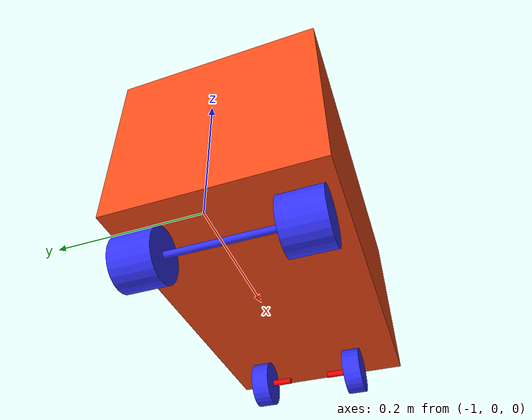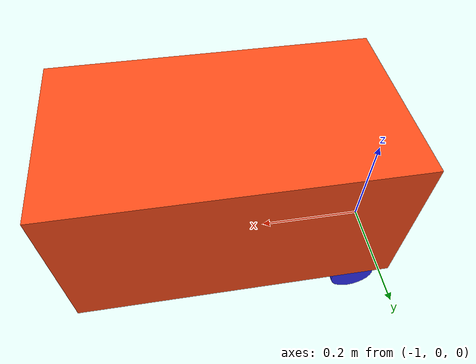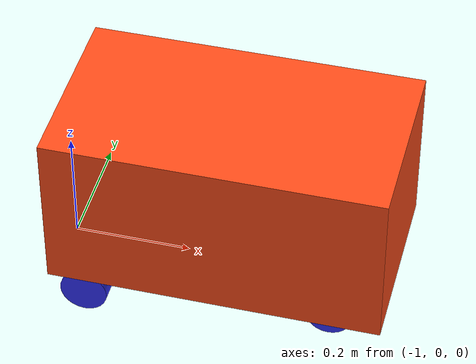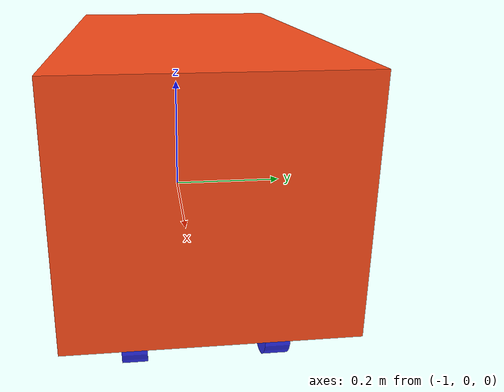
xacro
<?xml version="1.0"?>
<robot xmlns:xacro="http://www.ros.org/wiki/xacro" >

    <xacro:property name="chassis_length" value="0.559"/>
    <xacro:property name="chassis_width" value="0.311"/>
    <xacro:property name="chassis_height" value="0.2795"/>
    <xacro:property name="chassis_mass" value="1.0"/>
    <xacro:property name="front_wheel_radius" value="0.0375"/>
    <xacro:property name="rear_wheel_radius" value="0.040"/>
    <xacro:property name="front_wheel_thickness" value="0.029"/>
    <xacro:property name="rear_wheel_thickness" value="0.061"/>
    <xacro:property name="wheel_mass" value="0.05"/>
    <xacro:property name="front_wheel_offset_y" value="0.0819"/>
    <xacro:property name="rear_wheel_offset_y" value="0.1101"/>

    <material name="white">
        <color rgba="1 1 1 1" />
    </material>

    <material name="orange">
        <color rgba="1 0.3 0.1 1"/>
    </material>

    <material name="blue">
        <color rgba="0.2 0.2 1 1"/>
    </material>

    <material name="black">
        <color rgba="0 0 0 1"/>
    </material>

    <material name="red">
        <color rgba="1 0 0 1"/>
    </material>

    <!-- BASE LINK -->

    <link name="base_link">

    </link>

    <!-- BASE_FOOTPRINT LINK -->

    <joint name="base_footprint_joint" type="fixed">
        <parent link="base_link"/>
        <child link="base_footprint"/>
        <origin xyz="0 0 0" rpy="0 0 0"/>
    </joint>

    <link name="base_footprint">
    </link>

    <!-- CHASSIS LINK -->

    <joint name="chassis_joint" type="fixed">
        <parent link="base_link"/>
        <child link="chassis"/>
        <origin xyz="-1 0 0.0415"/>
    </joint>

    <link name="chassis">
        <visual>
            <origin xyz="${chassis_length/2} 0 ${chassis_height/2}"/>
            <geometry>
                <box size="${chassis_length} ${chassis_width} ${chassis_height}"/>
            </geometry>
            <material name="orange"/>
        </visual>
        <collision>
            <origin xyz="${chassis_length/2} 0 ${chassis_height/2}"/>
            <geometry>
                <box size="${chassis_length} ${chassis_width} ${chassis_height}"/>
            </geometry>
        </collision>
    </link>

    <!-- FRONT LEFT AXEL LINK-->

    <joint name="front_left_axel_joint" type="revolute">
        <parent link="base_link"/>
        <child link="front_left_axel"/>
        <origin xyz="-0.5375 ${front_wheel_offset_y - 0.0319} 0" rpy="-${pi/2} 0 0" />
        <axis xyz="0 -1 0"/>
        <limit lower="${-pi/4}" upper="${pi/4}" velocity="100" effort="100"/>
    </joint>

    <link name="front_left_axel">
        <visual>
            <geometry>
                <cylinder radius="0.005" length="0.0319"/>
            </geometry>
            <material name="red"/>
        </visual>
        <collision>
            <geometry>
                <sphere radius="0.005"/>
            </geometry>
        </collision>
    </link>

    <!-- FRONT LEFT WHEEL LINK -->

    <joint name="front_left_wheel_joint" type="continuous">
        <parent link="front_left_axel"/>
        <child link="front_left_wheel"/>
        <origin xyz="0 0 0.0319" rpy="0 0 0" />
        <axis xyz="0 0 1"/>
    </joint>

    <link name="front_left_wheel">
        <visual>
            <geometry>
                <cylinder radius="${front_wheel_radius}" length="${front_wheel_thickness}"/>
            </geometry>
            <material name="blue"/>
        </visual>
        <collision>
            <geometry>
                <sphere radius="${front_wheel_radius}"/>
            </geometry>
        </collision>
    </link>

  <!-- FRONT RIGHT AXEL LINK-->

    <joint name="front_right_axel_joint" type="revolute">
        <parent link="base_link"/>
        <child link="front_right_axel"/>
        <origin xyz="-0.5375 ${-front_wheel_offset_y + 0.0319} 0" rpy="-${pi/2} 0 0" />
        <axis xyz="0 1 0"/>
        <limit lower="${-pi/4}" upper="${pi/4}" velocity="100" effort="100"/>
    </joint>

    <link name="front_right_axel">
        <visual>
            <geometry>
                <cylinder radius="0.005" length="0.0319"/>
            </geometry>
            <material name="red"/>
        </visual>
        <collision>
            <geometry>
                <sphere radius="0.005"/>
            </geometry>
        </collision>
    </link>

    <!-- FRONT RIGHT WHEEL LINK -->

    <joint name="front_right_wheel_joint" type="continuous">
        <parent link="front_right_axel"/>
        <child link="front_right_wheel"/>
        <origin xyz="0 0 -0.0319" rpy="0 0 0" />
        <axis xyz="0 0 -1"/>
    </joint>

    <link name="front_right_wheel">
        <visual>
            <geometry>
                <cylinder radius="${front_wheel_radius}" length="${front_wheel_thickness}"/>
            </geometry>
            <material name="blue"/>
        </visual>
        <collision>
            <geometry>
                <sphere radius="${front_wheel_radius}"/>
            </geometry>
        </collision>
    </link>

    <!-- REAR AXEL LINK -->

    <joint name="rear_axel_joint" type="continuous">
        <parent link="base_link"/>
        <child link="rear_axel"/>
        <origin xyz="-0.945 0 0" rpy="-${pi/2} 0 0" />
        <axis xyz="0 0 1"/>
    </joint>

    <link name="rear_axel">
        <visual>
            <geometry>
                <cylinder radius="0.005" length="0.2202"/>
            </geometry>
            <material name="blue"/>
        </visual>
        <collision>
            <geometry>
                <cylinder radius="${rear_wheel_radius}" length="0.2202"/>
            </geometry>
        </collision>
    </link>

    <gazebo reference="rear_axel">
        <material>Gazebo/Red</material>
    </gazebo>

    <!-- REAR LEFT WHEEL LINK -->

    <joint name="rear_left_wheel_joint" type="fixed">
        <parent link="rear_axel"/>
        <child link="rear_left_wheel"/>
        <origin xyz="0 0 ${rear_wheel_offset_y}" rpy="0 0 0" />
        <axis xyz="0 0 1"/>
    </joint>

    <link name="rear_left_wheel">
        <visual>
            <geometry>
                <cylinder radius="${rear_wheel_radius}" length="${rear_wheel_thickness}"/>
            </geometry>
            <material name="blue"/>
        </visual>
        <collision>
            <geometry>
                <sphere radius="${rear_wheel_radius}"/>
            </geometry>
        </collision>
    </link>

    <gazebo reference="rear_left_wheel">
        <material>Gazebo/Blue</material>
    </gazebo>

<!-- REAR RIGHT WHEEL LINK -->

    <joint name="rear_right_wheel_joint" type="fixed">
        <parent link="rear_axel"/>
        <child link="rear_right_wheel"/>
        <origin xyz="0 0 ${-rear_wheel_offset_y}" rpy="0 0 0" />
        <axis xyz="0 0 -1"/>
    </joint>

    <link name="rear_right_wheel">
        <visual>
            <geometry>
                <cylinder radius="${rear_wheel_radius}" length="${rear_wheel_thickness}"/>
            </geometry>
            <material name="blue"/>
        </visual>
        <collision>
            <geometry>
                <sphere radius="${rear_wheel_radius}"/>
            </geometry>
        </collision>
    </link>

</robot>
